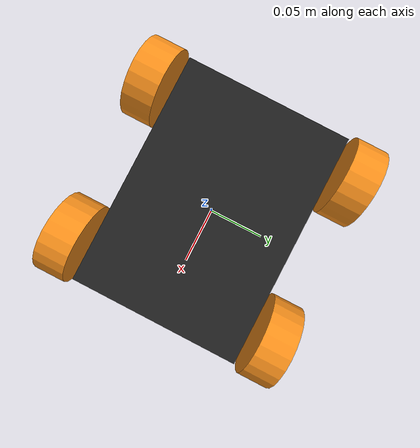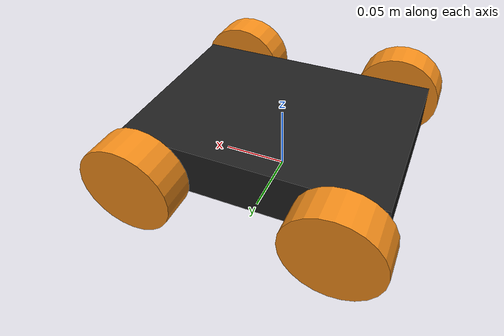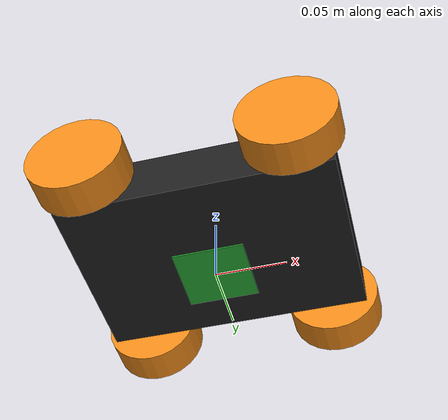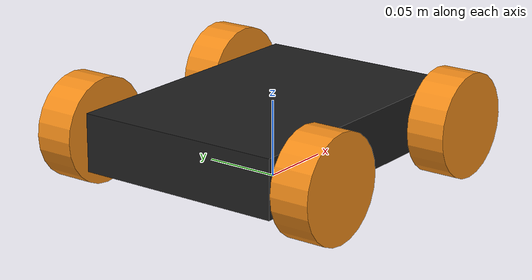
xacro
<?xml version="1.0"?>

<robot name="my_robot" xmlns:xacro="http://ros.org/wiki/xacro">

   <!-- Include all component files -->
   <xacro:include filename="$(find mbx1_description)/urdf/materials.urdf.xacro" />
   <xacro:include filename="$(find mbx1_description)/urdf/my_robot/base.urdf.xacro" />

   <!-- Add the base and wheels -->
   <base name="base" color="Black"/>

</robot>

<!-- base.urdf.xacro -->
<robot name="base" xmlns:xacro="http://ros.org/wiki/xacro">

  <!-- Define a number of dimensions using properties -->
  <property name="base_size_x" value="0.195" />
  <property name="base_size_y" value="0.140" />
  <property name="base_size_z" value="0.038" />
  <property name="wheel_length" value="0.026" />
  <property name="wheel_radius" value="0.0345" />
  <property name="wheel_offset_x" value="0.072" />
  <property name="wheel_offset_y" value="0.090" />
  <property name="wheel_offset_z" value="0" />

  <property name="PI" value="3.1415" />

  <!-- define a wheel -->
  <macro name="wheel" params="suffix parent reflect_x reflect_y color">
    <joint name="${parent}_${suffix}_wheel_joint" type="continuous">
      <axis xyz="0 0 1" />
      <limit effort="100" velocity="100"/>
      <safety_controller k_velocity="10" />
      <origin xyz="${reflect_x*wheel_offset_x} ${reflect_y*wheel_offset_y} ${wheel_offset_z}" rpy="${reflect_y*PI/2} 0 0" />
      <parent link="${parent}_link"/>
      <child link="${parent}_${suffix}_wheel_link"/>
    </joint>
    <link name="${parent}_${suffix}_wheel_link">
      <visual>
        <origin xyz="0 0 0" rpy="0 0 0" />
        <geometry>
          <cylinder radius="${wheel_radius}" length="${wheel_length}"/>
        </geometry>
        <material name="${color}" />
      </visual>
    </link>
  </macro>

  <!-- The base xacro macro -->
  <macro name="base" params="name color">
    <link name="${name}_link">
      <visual>
        <origin xyz="0 0 0" rpy="0 0 0" />
        <geometry>
          <box size="${base_size_x} ${base_size_y} ${base_size_z}" />
        </geometry>
        <material name="${color}" />
      </visual>
      <collision>
        <origin xyz="0 0 0" rpy="0 0 0" />
        <geometry>
          <box size="${base_size_x} ${wheel_offset_y*2 + wheel_length} ${base_size_z}" />
        </geometry>
      </collision>
    </link>
  </macro>

  <link name="base_footprint">
      <visual>
        <origin xyz="0 0 0" rpy="0 0 0" />
        <geometry>
          <box size="0.05 0.05 0.001" />
        </geometry>
        <material name="TransparentGreen" />
      </visual>
  </link>

  <joint name="base_joint" type="fixed">
    <origin xyz="0 0 ${wheel_radius-wheel_offset_z}" rpy="0 0 0" />
    <parent link="base_footprint"/>
    <child link="base_link" />
  </joint>

   <!-- Add the drive wheels -->
   <wheel parent="base" suffix="lf" reflect_x="1"  reflect_y="1"   color="Orange"/>
   <wheel parent="base" suffix="rf" reflect_x="1"  reflect_y="-1"  color="Orange"/>
   <wheel parent="base" suffix="lb" reflect_x="-1"  reflect_y="1"  color="Orange"/>
   <wheel parent="base" suffix="rb" reflect_x="-1"  reflect_y="-1"  color="Orange"/>

</robot>
